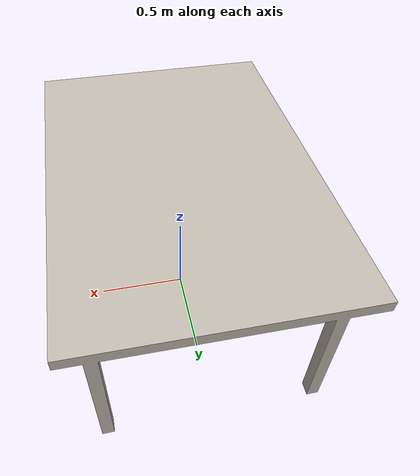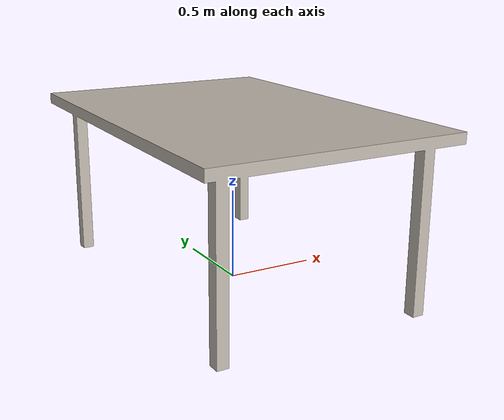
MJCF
<mujoco model="table">

    <default>
        <default class="collision">
            <geom group="3" rgba=".2 .6 .2 .3" friction="0.7 0.01 0.005"/>
        </default>
    </default>

    <asset>
        <mesh name="table_mesh" file="meshes/table/table.obj"/>
        <texture name="table_texture" type="2d" file="meshes/table/table.png"/>
        <material name="table_material" texture="table_texture"/>
    </asset>

    <worldbody>
        <body name="table_base" pos="0 0 0">
            <geom type="mesh" mesh="table_mesh" material="table_material" contype="0" conaffinity="0"/>
            <geom class="collision" type="box" size="0.688 1.005 0.03" pos="0 0 0.919"/>
            <geom class="collision" type="box" size="0.035 0.035 0.5" pos="0.555 0.875 0.4"/>
            <geom class="collision" type="box" size="0.035 0.035 0.5" pos="-0.555 0.875 0.4"/>
            <geom class="collision" type="box" size="0.035 0.035 0.5" pos="0.555 -0.875 0.4"/>
            <geom class="collision" type="box" size="0.035 0.035 0.5" pos="-0.555 -0.875 0.4"/>
        </body>
    </worldbody>

</mujoco>
